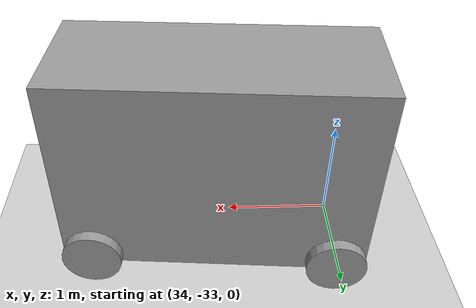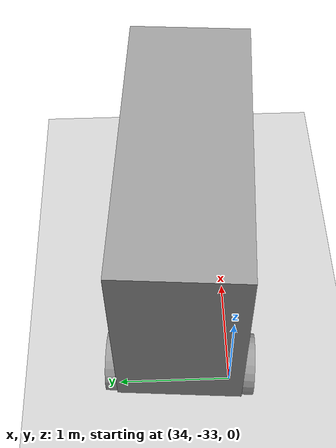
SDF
<sdf version="1.6">
 <world name="default">
  <model name="ground_plane">
   <static>1</static>
   <link name="link">
    <collision name="collision">
     <geometry><plane><normal>0 0 1</normal><size>100 100</size></plane></geometry>
     <surface><friction><ode><mu>100</mu><mu2>50</mu2></ode></friction></surface>
    </collision>
    <visual name="visual">
     <cast_shadows>0</cast_shadows>
     <geometry><plane><normal>0 0 1</normal><size>100 100</size></plane></geometry>
     <material>
      <script><uri>file://media/materials/scripts/gazebo.material</uri><name>Gazebo/Grey</name></script>
     </material>
    </visual>
   </link>
  </model>
  <model name="nuro_R2_0">
   <link name="link_0">
    <pose>-0.236667 0 1.13601 0 -0 0</pose>
    <inertial>
     <mass>1</mass>
     <inertia>
      <ixx>0.166667</ixx>
      <ixy>0</ixy>
      <ixz>0</ixz>
      <iyy>0.166667</iyy>
      <iyz>0</iyz>
      <izz>0.166667</izz>
     </inertia>
    </inertial>
    <visual name="visual">
     <geometry><box><size>2.74 1.1 1.86</size></box></geometry>
     <material>
      <lighting>1</lighting>
      <script><uri>file://media/materials/scripts/gazebo.material</uri><name>Gazebo/Grey</name></script>
      <shader type="pixel"><normal_map>__default__</normal_map></shader>
      <ambient>0.3 0.3 0.3 1</ambient>
      <diffuse>0.7 0.7 0.7 1</diffuse>
      <specular>0.01 0.01 0.01 1</specular>
      <emissive>0 0 0 1</emissive>
     </material>
    </visual>
    <collision name="collision">
     <geometry><box><size>2.74 1.1 1.86</size></box></geometry>
     <surface>
      <friction>
       <ode><mu>1</mu><mu2>1</mu2><fdir1>0 0 0</fdir1><slip1>0</slip1><slip2>0</slip2></ode>
       <torsional>
        <coefficient>1</coefficient>
        <patch_radius>0</patch_radius>
        <surface_radius>0</surface_radius>
        <use_patch_radius>1</use_patch_radius>
        <ode><slip>0</slip></ode>
       </torsional>
      </friction>
      <bounce><restitution_coefficient>0</restitution_coefficient><threshold>1e+06</threshold></bounce>
      <contact>
       <collide_without_contact>0</collide_without_contact>
       <collide_without_contact_bitmask>1</collide_without_contact_bitmask>
       <collide_bitmask>1</collide_bitmask>
       <ode>
        <soft_cfm>0</soft_cfm>
        <soft_erp>0.2</soft_erp>
        <kp>1e+13</kp>
        <kd>1</kd>
        <max_vel>0.01</max_vel>
        <min_depth>0</min_depth>
       </ode>
       <bullet>
        <split_impulse>1</split_impulse>
        <split_impulse_penetration_threshold>-0.01</split_impulse_penetration_threshold>
        <soft_cfm>0</soft_cfm>
        <soft_erp>0.2</soft_erp>
        <kp>1e+13</kp>
        <kd>1</kd>
       </bullet>
      </contact>
     </surface>
    </collision>
   </link>
   <link name="link_1">
    <pose>0.863333 -0.600026 0.306095 1.5707 -0 0</pose>
    <inertial>
     <mass>1</mass>
     <inertia><ixx>0.145833</ixx><ixy>0</ixy><ixz>0</ixz><iyy>0.145833</iyy><iyz>0</iyz><izz>0.125</izz></inertia>
    </inertial>
    <visual name="visual">
     <geometry><cylinder><radius>0.27</radius><length>0.1</length></cylinder></geometry>
     <material>
      <lighting>1</lighting>
      <script><uri>file://media/materials/scripts/gazebo.material</uri><name>Gazebo/Grey</name></script>
      <shader type="pixel"><normal_map>__default__</normal_map></shader>
      <ambient>0.3 0.3 0.3 1</ambient>
      <diffuse>0.7 0.7 0.7 1</diffuse>
      <specular>0.01 0.01 0.01 1</specular>
      <emissive>0 0 0 1</emissive>
     </material>
    </visual>
    <collision name="collision">
     <geometry><cylinder><radius>0.27</radius><length>0.1</length></cylinder></geometry>
     <surface>
      <friction>
       <ode><mu>1</mu><mu2>1</mu2><fdir1>0 0 0</fdir1><slip1>0</slip1><slip2>0</slip2></ode>
       <torsional>
        <coefficient>1</coefficient>
        <patch_radius>0</patch_radius>
        <surface_radius>0</surface_radius>
        <use_patch_radius>1</use_patch_radius>
        <ode><slip>0</slip></ode>
       </torsional>
      </friction>
      <bounce><restitution_coefficient>0</restitution_coefficient><threshold>1e+06</threshold></bounce>
      <contact>
       <collide_without_contact>0</collide_without_contact>
       <collide_without_contact_bitmask>1</collide_without_contact_bitmask>
       <collide_bitmask>1</collide_bitmask>
       <ode>
        <soft_cfm>0</soft_cfm>
        <soft_erp>0.2</soft_erp>
        <kp>1e+13</kp>
        <kd>1</kd>
        <max_vel>0.01</max_vel>
        <min_depth>0</min_depth>
       </ode>
       <bullet>
        <split_impulse>1</split_impulse>
        <split_impulse_penetration_threshold>-0.01</split_impulse_penetration_threshold>
        <soft_cfm>0</soft_cfm>
        <soft_erp>0.2</soft_erp>
        <kp>1e+13</kp>
        <kd>1</kd>
       </bullet>
      </contact>
     </surface>
    </collision>
   </link>
   <link name="link_1_clone">
    <pose>-1.33667 -0.600026 0.306095 1.5707 -0 0</pose>
    <inertial>
     <mass>1</mass>
     <inertia><ixx>0.145833</ixx><ixy>0</ixy><ixz>0</ixz><iyy>0.145833</iyy><iyz>0</iyz><izz>0.125</izz></inertia>
    </inertial>
    <visual name="visual">
     <geometry><cylinder><radius>0.27</radius><length>0.1</length></cylinder></geometry>
     <material>
      <lighting>1</lighting>
      <script><uri>file://media/materials/scripts/gazebo.material</uri><name>Gazebo/Grey</name></script>
      <shader type="pixel"><normal_map>__default__</normal_map></shader>
      <ambient>0.3 0.3 0.3 1</ambient>
      <diffuse>0.7 0.7 0.7 1</diffuse>
      <specular>0.01 0.01 0.01 1</specular>
      <emissive>0 0 0 1</emissive>
     </material>
    </visual>
    <collision name="collision">
     <geometry><cylinder><radius>0.27</radius><length>0.1</length></cylinder></geometry>
     <surface>
      <friction>
       <ode><mu>1</mu><mu2>1</mu2><fdir1>0 0 0</fdir1><slip1>0</slip1><slip2>0</slip2></ode>
       <torsional>
        <coefficient>1</coefficient>
        <patch_radius>0</patch_radius>
        <surface_radius>0</surface_radius>
        <use_patch_radius>1</use_patch_radius>
        <ode><slip>0</slip></ode>
       </torsional>
      </friction>
      <bounce><restitution_coefficient>0</restitution_coefficient><threshold>1e+06</threshold></bounce>
      <contact>
       <collide_without_contact>0</collide_without_contact>
       <collide_without_contact_bitmask>1</collide_without_contact_bitmask>
       <collide_bitmask>1</collide_bitmask>
       <ode>
        <soft_cfm>0</soft_cfm>
        <soft_erp>0.2</soft_erp>
        <kp>1e+13</kp>
        <kd>1</kd>
        <max_vel>0.01</max_vel>
        <min_depth>0</min_depth>
       </ode>
       <bullet>
        <split_impulse>1</split_impulse>
        <split_impulse_penetration_threshold>-0.01</split_impulse_penetration_threshold>
        <soft_cfm>0</soft_cfm>
        <soft_erp>0.2</soft_erp>
        <kp>1e+13</kp>
        <kd>1</kd>
       </bullet>
      </contact>
     </surface>
    </collision>
   </link>
   <link name="link_1_clone_0">
    <pose>0.863333 0.600026 0.306095 1.5707 -0 0</pose>
    <inertial>
     <mass>1</mass>
     <inertia><ixx>0.145833</ixx><ixy>0</ixy><ixz>0</ixz><iyy>0.145833</iyy><iyz>0</iyz><izz>0.125</izz></inertia>
    </inertial>
    <visual name="visual">
     <geometry><cylinder><radius>0.27</radius><length>0.1</length></cylinder></geometry>
     <material>
      <lighting>1</lighting>
      <script><uri>file://media/materials/scripts/gazebo.material</uri><name>Gazebo/Grey</name></script>
      <shader type="pixel"><normal_map>__default__</normal_map></shader>
      <ambient>0.3 0.3 0.3 1</ambient>
      <diffuse>0.7 0.7 0.7 1</diffuse>
      <specular>0.01 0.01 0.01 1</specular>
      <emissive>0 0 0 1</emissive>
     </material>
    </visual>
    <collision name="collision">
     <geometry><cylinder><radius>0.27</radius><length>0.1</length></cylinder></geometry>
     <surface>
      <friction>
       <ode><mu>1</mu><mu2>1</mu2><fdir1>0 0 0</fdir1><slip1>0</slip1><slip2>0</slip2></ode>
       <torsional>
        <coefficient>1</coefficient>
        <patch_radius>0</patch_radius>
        <surface_radius>0</surface_radius>
        <use_patch_radius>1</use_patch_radius>
        <ode><slip>0</slip></ode>
       </torsional>
      </friction>
      <bounce><restitution_coefficient>0</restitution_coefficient><threshold>1e+06</threshold></bounce>
      <contact>
       <collide_without_contact>0</collide_without_contact>
       <collide_without_contact_bitmask>1</collide_without_contact_bitmask>
       <collide_bitmask>1</collide_bitmask>
       <ode>
        <soft_cfm>0</soft_cfm>
        <soft_erp>0.2</soft_erp>
        <kp>1e+13</kp>
        <kd>1</kd>
        <max_vel>0.01</max_vel>
        <min_depth>0</min_depth>
       </ode>
       <bullet>
        <split_impulse>1</split_impulse>
        <split_impulse_penetration_threshold>-0.01</split_impulse_penetration_threshold>
        <soft_cfm>0</soft_cfm>
        <soft_erp>0.2</soft_erp>
        <kp>1e+13</kp>
        <kd>1</kd>
       </bullet>
      </contact>
     </surface>
    </collision>
   </link>
   <link name="link_1_clone_1">
    <pose>-1.33667 0.600026 0.306095 1.5707 -0 0</pose>
    <inertial>
     <mass>1</mass>
     <inertia><ixx>0.145833</ixx><ixy>0</ixy><ixz>0</ixz><iyy>0.145833</iyy><iyz>0</iyz><izz>0.125</izz></inertia>
    </inertial>
    <visual name="visual">
     <geometry><cylinder><radius>0.27</radius><length>0.1</length></cylinder></geometry>
     <material>
      <lighting>1</lighting>
      <script><uri>file://media/materials/scripts/gazebo.material</uri><name>Gazebo/Grey</name></script>
      <shader type="pixel"><normal_map>__default__</normal_map></shader>
      <ambient>0.3 0.3 0.3 1</ambient>
      <diffuse>0.7 0.7 0.7 1</diffuse>
      <specular>0.01 0.01 0.01 1</specular>
      <emissive>0 0 0 1</emissive>
     </material>
    </visual>
    <collision name="collision">
     <geometry><cylinder><radius>0.27</radius><length>0.1</length></cylinder></geometry>
     <surface>
      <friction>
       <ode><mu>1</mu><mu2>1</mu2><fdir1>0 0 0</fdir1><slip1>0</slip1><slip2>0</slip2></ode>
       <torsional>
        <coefficient>1</coefficient>
        <patch_radius>0</patch_radius>
        <surface_radius>0</surface_radius>
        <use_patch_radius>1</use_patch_radius>
        <ode><slip>0</slip></ode>
       </torsional>
      </friction>
      <bounce><restitution_coefficient>0</restitution_coefficient><threshold>1e+06</threshold></bounce>
      <contact>
       <collide_without_contact>0</collide_without_contact>
       <collide_without_contact_bitmask>1</collide_without_contact_bitmask>
       <collide_bitmask>1</collide_bitmask>
       <ode>
        <soft_cfm>0</soft_cfm>
        <soft_erp>0.2</soft_erp>
        <kp>1e+13</kp>
        <kd>1</kd>
        <max_vel>0.01</max_vel>
        <min_depth>0</min_depth>
       </ode>
       <bullet>
        <split_impulse>1</split_impulse>
        <split_impulse_penetration_threshold>-0.01</split_impulse_penetration_threshold>
        <soft_cfm>0</soft_cfm>
        <soft_erp>0.2</soft_erp>
        <kp>1e+13</kp>
        <kd>1</kd>
       </bullet>
      </contact>
     </surface>
    </collision>
   </link>
   <link name="link_3">
    <pose>1.18333 0 0.256011 0 -0 0</pose>
    <inertial>
     <mass>1</mass>
     <inertia>
      <ixx>0.166667</ixx>
      <ixy>0</ixy>
      <ixz>0</ixz>
      <iyy>0.166667</iyy>
      <iyz>0</iyz>
      <izz>0.166667</izz>
     </inertia>
    </inertial>
    <visual name="visual">
     <geometry><box><size>0.1 0.3 0.1</size></box></geometry>
     <material>
      <lighting>1</lighting>
      <script><uri>file://media/materials/scripts/gazebo.material</uri><name>Gazebo/Grey</name></script>
      <shader type="pixel"><normal_map>__default__</normal_map></shader>
      <ambient>0.3 0.3 0.3 1</ambient>
      <diffuse>0.7 0.7 0.7 1</diffuse>
      <specular>0.01 0.01 0.01 1</specular>
      <emissive>0 0 0 1</emissive>
     </material>
    </visual>
    <collision name="collision">
     <geometry><box><size>0.1 0.3 0.1</size></box></geometry>
     <surface>
      <friction>
       <ode><mu>1</mu><mu2>1</mu2><fdir1>0 0 0</fdir1><slip1>0</slip1><slip2>0</slip2></ode>
       <torsional>
        <coefficient>1</coefficient>
        <patch_radius>0</patch_radius>
        <surface_radius>0</surface_radius>
        <use_patch_radius>1</use_patch_radius>
        <ode><slip>0</slip></ode>
       </torsional>
      </friction>
      <bounce><restitution_coefficient>0</restitution_coefficient><threshold>1e+06</threshold></bounce>
      <contact>
       <collide_without_contact>0</collide_without_contact>
       <collide_without_contact_bitmask>1</collide_without_contact_bitmask>
       <collide_bitmask>1</collide_bitmask>
       <ode>
        <soft_cfm>0</soft_cfm>
        <soft_erp>0.2</soft_erp>
        <kp>1e+13</kp>
        <kd>1</kd>
        <max_vel>0.01</max_vel>
        <min_depth>0</min_depth>
       </ode>
       <bullet>
        <split_impulse>1</split_impulse>
        <split_impulse_penetration_threshold>-0.01</split_impulse_penetration_threshold>
        <soft_cfm>0</soft_cfm>
        <soft_erp>0.2</soft_erp>
        <kp>1e+13</kp>
        <kd>1</kd>
       </bullet>
      </contact>
     </surface>
    </collision>
   </link>
   <joint name="link_0_JOINT_0" type="revolute">
    <parent>link_0</parent>
    <child>link_1</child>
    <pose>0 0 0 -0.01 0 0</pose>
    <axis>
     <xyz>0 0 1</xyz>
     <use_parent_model_frame>0</use_parent_model_frame>
     <limit>
      <lower>-1.79769e+308</lower>
      <upper>1.79769e+308</upper>
      <effort>-1</effort>
      <velocity>-1</velocity>
     </limit>
     <dynamics>
      <spring_reference>0</spring_reference>
      <spring_stiffness>0</spring_stiffness>
      <damping>0</damping>
     </dynamics>
    </axis>
    <physics>
     <ode><limit><cfm>0</cfm><erp>0.2</erp></limit><suspension><cfm>0</cfm><erp>0.2</erp></suspension></ode>
    </physics>
   </joint>
   <joint name="link_0_JOINT_1" type="revolute">
    <parent>link_0</parent>
    <child>link_1_clone</child>
    <axis>
     <xyz>0 0 1</xyz>
     <use_parent_model_frame>0</use_parent_model_frame>
     <limit>
      <lower>-1.79769e+308</lower>
      <upper>1.79769e+308</upper>
      <effort>-1</effort>
      <velocity>-1</velocity>
     </limit>
     <dynamics>
      <spring_reference>0</spring_reference>
      <spring_stiffness>0</spring_stiffness>
      <damping>0</damping>
     </dynamics>
    </axis>
    <physics>
     <ode><limit><cfm>0</cfm><erp>0.2</erp></limit><suspension><cfm>0</cfm><erp>0.2</erp></suspension></ode>
    </physics>
   </joint>
   <joint name="link_0_JOINT_2" type="revolute">
    <parent>link_0</parent>
    <child>link_1_clone_0</child>
    <axis>
     <xyz>0 0 1</xyz>
     <use_parent_model_frame>0</use_parent_model_frame>
     <limit>
      <lower>-1.79769e+308</lower>
      <upper>1.79769e+308</upper>
      <effort>-1</effort>
      <velocity>-1</velocity>
     </limit>
     <dynamics>
      <spring_reference>0</spring_reference>
      <spring_stiffness>0</spring_stiffness>
      <damping>0</damping>
     </dynamics>
    </axis>
    <physics>
     <ode><limit><cfm>0</cfm><erp>0.2</erp></limit><suspension><cfm>0</cfm><erp>0.2</erp></suspension></ode>
    </physics>
   </joint>
   <joint name="link_0_JOINT_3" type="revolute">
    <parent>link_0</parent>
    <child>link_1_clone_1</child>
    <axis>
     <xyz>0 0 1</xyz>
     <use_parent_model_frame>0</use_parent_model_frame>
     <limit>
      <lower>-1.79769e+308</lower>
      <upper>1.79769e+308</upper>
      <effort>-1</effort>
      <velocity>-1</velocity>
     </limit>
     <dynamics>
      <spring_reference>0</spring_reference>
      <spring_stiffness>0</spring_stiffness>
      <damping>0</damping>
     </dynamics>
    </axis>
    <physics>
     <ode><limit><cfm>0</cfm><erp>0.2</erp></limit><suspension><cfm>0</cfm><erp>0.2</erp></suspension></ode>
    </physics>
   </joint>
   <joint name="link_0_JOINT_5" type="fixed">
    <parent>link_0</parent>
    <child>link_3</child>
    <physics>
     <ode><limit><cfm>0</cfm><erp>0.2</erp></limit><suspension><cfm>0</cfm><erp>0.2</erp></suspension></ode>
    </physics>
   </joint>
   <static>0</static>
   <pose>35.3867 -32.6538 -0.036091 1e-06 -1e-06 -0.072931</pose>
  </model>
 </world>
</sdf>
